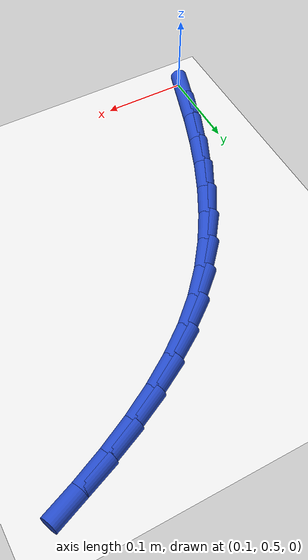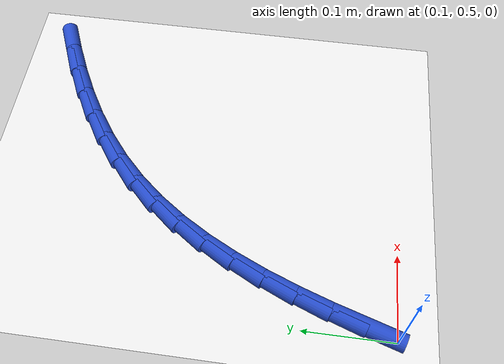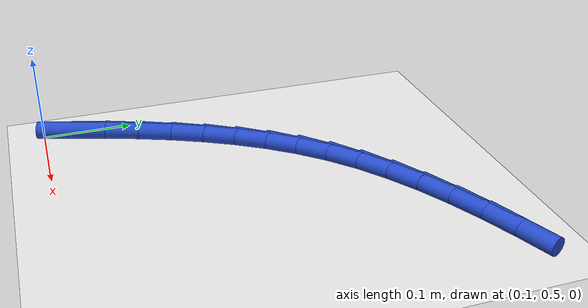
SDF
<sdf version="1.6">
 <world name="default">
  <model name="ground_plane">
   <static>1</static>
   <link name="link">
    <collision name="collision">
     <geometry><plane><normal>0 0 1</normal><size>100 100</size></plane></geometry>
     <surface><friction><ode><mu>100</mu><mu2>50</mu2></ode></friction></surface>
    </collision>
    <visual name="visual">
     <cast_shadows>0</cast_shadows>
     <geometry><plane><normal>0 0 1</normal><size>100 100</size></plane></geometry>
     <material>
      <script><uri>file://media/materials/scripts/gazebo.material</uri><name>Gazebo/WhiteGlow</name></script>
     </material>
    </visual>
   </link>
  </model>
  <model name="line">
   <link name="link_14">
    <pose>0.10926587726686911 0.532182894330102 0.01 0 1.57 1.263448441039871</pose>
    <collision name="collision">
     <geometry><cylinder><radius>0.01</radius><length>0.08</length></cylinder></geometry>
    </collision>
    <visual name="visual">
     <material>
      <script><name>Gazebo/Blue</name><uri>file://media/materials/scripts/gazebo.material</uri></script>
     </material>
     <geometry><cylinder><radius>0.01</radius><length>0.08</length></cylinder></geometry>
    </visual>
   </link>
   <link name="link_15">
    <pose>0.12124440725028303 0.5699217525791623 0.01 0 1.57 1.2291768824134819</pose>
    <collision name="collision">
     <geometry><cylinder><radius>0.01</radius><length>0.08</length></cylinder></geometry>
    </collision>
    <visual name="visual">
     <material>
      <script><name>Gazebo/Blue</name><uri>file://media/materials/scripts/gazebo.material</uri></script>
     </material>
     <geometry><cylinder><radius>0.01</radius><length>0.08</length></cylinder></geometry>
    </visual>
   </link>
   <link name="link_16">
    <pose>0.1343737137029174 0.6068474644580875 0.01 0 1.57 1.1873282245700671</pose>
    <collision name="collision">
     <geometry><cylinder><radius>0.01</radius><length>0.08</length></cylinder></geometry>
    </collision>
    <visual name="visual">
     <material>
      <script><name>Gazebo/Blue</name><uri>file://media/materials/scripts/gazebo.material</uri></script>
     </material>
     <geometry><cylinder><radius>0.01</radius><length>0.08</length></cylinder></geometry>
    </visual>
   </link>
   <link name="link_17">
    <pose>0.14885734005287604 0.6427478154825018 0.01 0 1.57 1.137359574336715</pose>
    <collision name="collision">
     <geometry><cylinder><radius>0.01</radius><length>0.08</length></cylinder></geometry>
    </collision>
    <visual name="visual">
     <material>
      <script><name>Gazebo/Blue</name><uri>file://media/materials/scripts/gazebo.material</uri></script>
     </material>
     <geometry><cylinder><radius>0.01</radius><length>0.08</length></cylinder></geometry>
    </visual>
   </link>
   <link name="link_18">
    <pose>0.16489882972826295 0.67741059116803 0.01 0 1.57 1.0787479608447574</pose>
    <collision name="collision">
     <geometry><cylinder><radius>0.01</radius><length>0.08</length></cylinder></geometry>
    </collision>
    <visual name="visual">
     <material>
      <script><name>Gazebo/Blue</name><uri>file://media/materials/scripts/gazebo.material</uri></script>
     </material>
     <geometry><cylinder><radius>0.01</radius><length>0.08</length></cylinder></geometry>
    </visual>
   </link>
   <link name="link_19">
    <pose>0.18270172615718192 0.7106235770302967 0.01 0 1.57 1.0110927604278672</pose>
    <collision name="collision">
     <geometry><cylinder><radius>0.01</radius><length>0.08</length></cylinder></geometry>
    </collision>
    <visual name="visual">
     <material>
      <script><name>Gazebo/Blue</name><uri>file://media/materials/scripts/gazebo.material</uri></script>
     </material>
     <geometry><cylinder><radius>0.01</radius><length>0.08</length></cylinder></geometry>
    </visual>
   </link>
   <link name="link_20">
    <pose>0.20246957276773692 0.7421745585849262 0.01 0 1.57 0.9342588750147812</pose>
    <collision name="collision">
     <geometry><cylinder><radius>0.01</radius><length>0.08</length></cylinder></geometry>
    </collision>
    <visual name="visual">
     <material>
      <script><name>Gazebo/Blue</name><uri>file://media/materials/scripts/gazebo.material</uri></script>
     </material>
     <geometry><cylinder><radius>0.01</radius><length>0.08</length></cylinder></geometry>
    </visual>
   </link>
   <link name="link_21">
    <pose>0.22440591298803178 0.7718513213475431 0.01 0 1.57 0.8485517188159636</pose>
    <collision name="collision">
     <geometry><cylinder><radius>0.01</radius><length>0.08</length></cylinder></geometry>
    </collision>
    <visual name="visual">
     <material>
      <script><name>Gazebo/Blue</name><uri>file://media/materials/scripts/gazebo.material</uri></script>
     </material>
     <geometry><cylinder><radius>0.01</radius><length>0.08</length></cylinder></geometry>
    </visual>
   </link>
   <link name="link_22">
    <pose>0.24871429024617048 0.7994416508337719 0.01 0 1.57 0.7560578348984001</pose>
    <collision name="collision">
     <geometry><cylinder><radius>0.01</radius><length>0.08</length></cylinder></geometry>
    </collision>
    <visual name="visual">
     <material>
      <script><name>Gazebo/Blue</name><uri>file://media/materials/scripts/gazebo.material</uri></script>
     </material>
     <geometry><cylinder><radius>0.01</radius><length>0.08</length></cylinder></geometry>
    </visual>
   </link>
   <link name="link_23">
    <pose>0.27556357802786163 0.8247598869639315 0.01 0 1.57 0.6685631152657541</pose>
    <collision name="collision">
     <geometry><cylinder><radius>0.01</radius><length>0.08</length></cylinder></geometry>
    </collision>
    <visual name="visual">
     <material>
      <script><name>Gazebo/Blue</name><uri>file://media/materials/scripts/gazebo.material</uri></script>
     </material>
     <geometry><cylinder><radius>0.01</radius><length>0.08</length></cylinder></geometry>
    </visual>
   </link>
   <link name="link_24">
    <pose>0.30480850271612625 0.8478609812291112 0.01 0 1.57 0.5920031116642797</pose>
    <collision name="collision">
     <geometry><cylinder><radius>0.01</radius><length>0.08</length></cylinder></geometry>
    </collision>
    <visual name="visual">
     <material>
      <script><name>Gazebo/Blue</name><uri>file://media/materials/scripts/gazebo.material</uri></script>
     </material>
     <geometry><cylinder><radius>0.01</radius><length>0.08</length></cylinder></geometry>
    </visual>
   </link>
   <link name="link_25">
    <pose>0.33613663167671015 0.8689279155665567 0.01 0 1.57 0.5260467315800115</pose>
    <collision name="collision">
     <geometry><cylinder><radius>0.01</radius><length>0.08</length></cylinder></geometry>
    </collision>
    <visual name="visual">
     <material>
      <script><name>Gazebo/Blue</name><uri>file://media/materials/scripts/gazebo.material</uri></script>
     </material>
     <geometry><cylinder><radius>0.01</radius><length>0.08</length></cylinder></geometry>
    </visual>
   </link>
   <link name="link_26">
    <pose>0.3692339810309937 0.8881448600427045 0.01 0 1.57 0.4699905539958062</pose>
    <collision name="collision">
     <geometry><cylinder><radius>0.01</radius><length>0.08</length></cylinder></geometry>
    </collision>
    <visual name="visual">
     <material>
      <script><name>Gazebo/Blue</name><uri>file://media/materials/scripts/gazebo.material</uri></script>
     </material>
     <geometry><cylinder><radius>0.01</radius><length>0.08</length></cylinder></geometry>
    </visual>
   </link>
   <link name="link_27">
    <pose>0.40378656690035686 0.9056959847239914 0.01 0 1.57 0.42302276964865476</pose>
    <collision name="collision">
     <geometry><cylinder><radius>0.01</radius><length>0.08</length></cylinder></geometry>
    </collision>
    <visual name="visual">
     <material>
      <script><name>Gazebo/Blue</name><uri>file://media/materials/scripts/gazebo.material</uri></script>
     </material>
     <geometry><cylinder><radius>0.01</radius><length>0.08</length></cylinder></geometry>
    </visual>
   </link>
   <link name="link_28">
    <pose>0.43948040540618066 0.9217654596768546 0.01 0 1.57 0.38436100685794145</pose>
    <collision name="collision">
     <geometry><cylinder><radius>0.01</radius><length>0.08</length></cylinder></geometry>
    </collision>
    <visual name="visual">
     <material>
      <script><name>Gazebo/Blue</name><uri>file://media/materials/scripts/gazebo.material</uri></script>
     </material>
     <geometry><cylinder><radius>0.01</radius><length>0.08</length></cylinder></geometry>
    </visual>
   </link>
  </model>
 </world>
</sdf>
